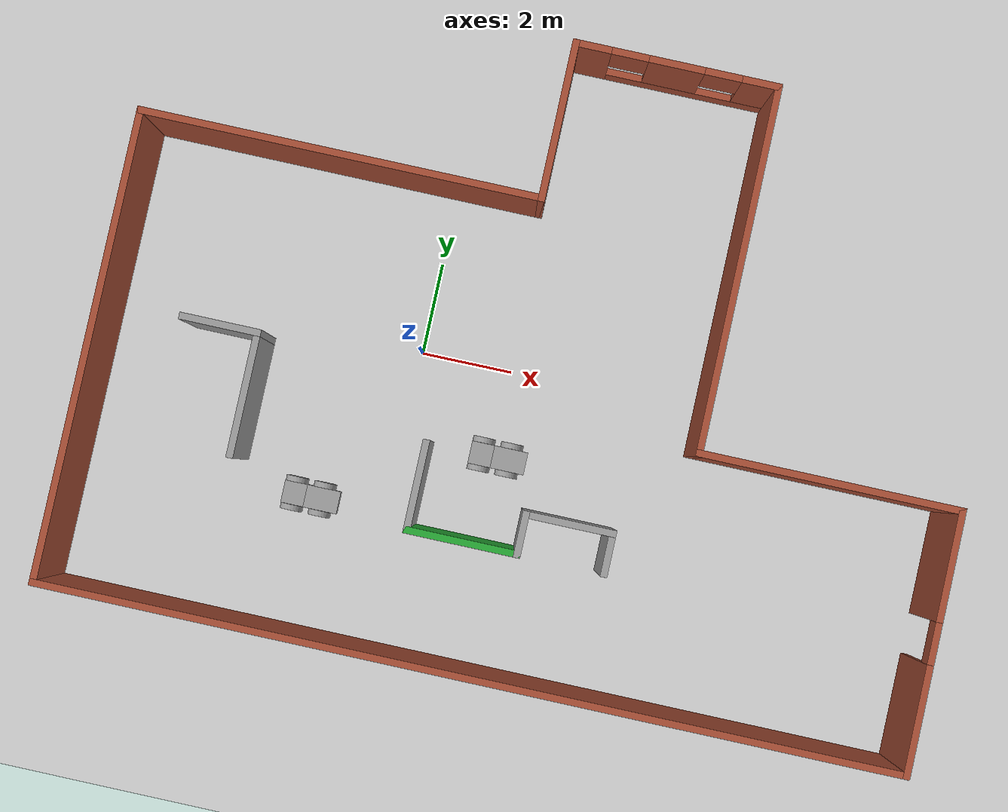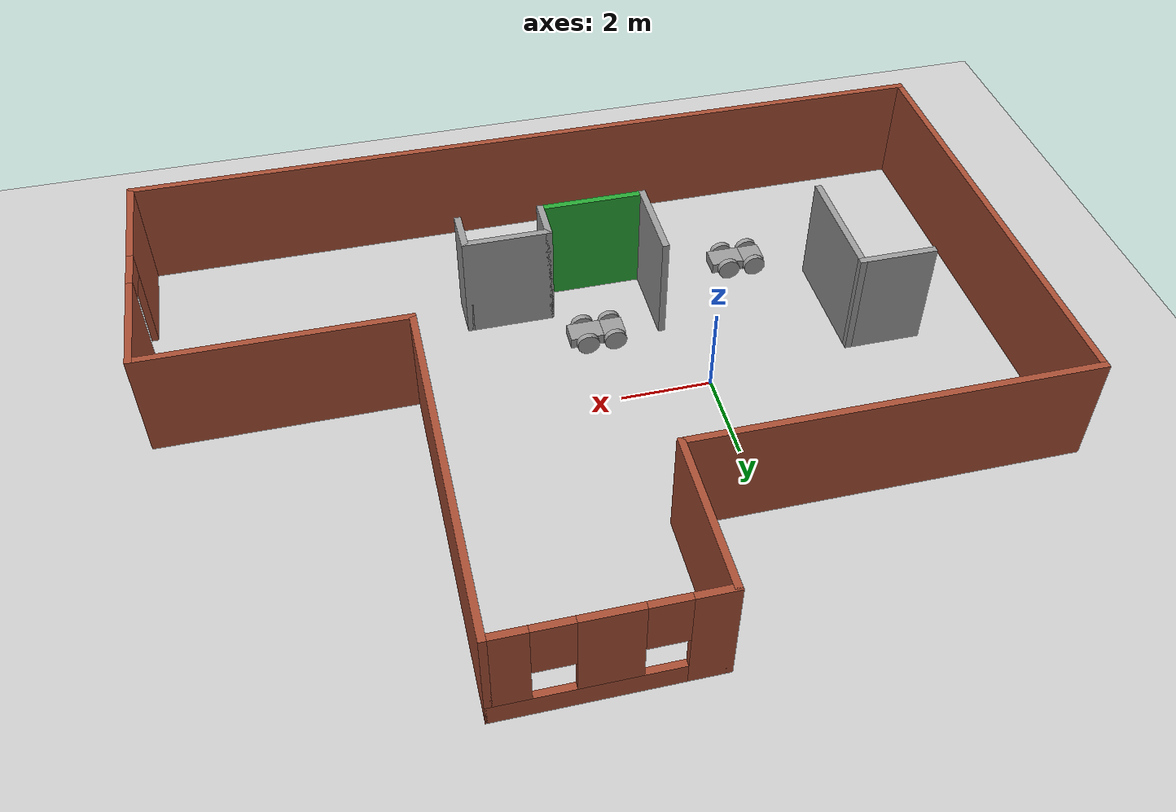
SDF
<sdf version="1.7">
 <world name="default">
  <model name="ground_plane">
   <static>1</static>
   <link name="link">
    <collision name="collision">
     <geometry><plane><normal>0 0 1</normal><size>100 100</size></plane></geometry>
     <surface><friction><ode><mu>100</mu><mu2>50</mu2></ode></friction></surface>
    </collision>
    <visual name="visual">
     <cast_shadows>0</cast_shadows>
     <geometry><plane><normal>0 0 1</normal><size>100 100</size></plane></geometry>
     <material>
      <script><uri>file://media/materials/scripts/gazebo.material</uri><name>Gazebo/Grey</name></script>
     </material>
    </visual>
   </link>
  </model>
  <model name="pj1_building">
   <pose>2.51888 0.191899 0 0 -0 0</pose>
   <link name="Wall_10">
    <pose>9.275 -3.925 0 0 0 -1.5708</pose>
    <visual name="Wall_10_Visual_0">
     <pose>-1.65724 0 1.25 0 -0 0</pose>
     <geometry><box><size>2.43551 0.15 2.5</size></box></geometry>
     <material>
      <script><uri>file://media/materials/scripts/gazebo.material</uri><name>Gazebo/Bricks</name></script>
      <ambient>1 1 1 1</ambient>
     </material>
     <meta><layer>0</layer></meta>
    </visual>
    <collision name="Wall_10_Collision_0">
     <geometry><box><size>2.43551 0.15 2.5</size></box></geometry>
     <pose>-1.65724 0 1.25 0 -0 0</pose>
    </collision>
    <visual name="Wall_10_Visual_1">
     <pose>1.66776 0 1.25 0 -0 0</pose>
     <geometry><box><size>2.41449 0.15 2.5</size></box></geometry>
     <material>
      <script><uri>file://media/materials/scripts/gazebo.material</uri><name>Gazebo/Bricks</name></script>
      <ambient>1 1 1 1</ambient>
     </material>
     <meta><layer>0</layer></meta>
    </visual>
    <collision name="Wall_10_Collision_1">
     <geometry><box><size>2.41449 0.15 2.5</size></box></geometry>
     <pose>1.66776 0 1.25 0 -0 0</pose>
    </collision>
    <visual name="Wall_10_Visual_2">
     <pose>0.010514 0 2.25 0 -0 0</pose>
     <geometry><box><size>0.9 0.15 0.5</size></box></geometry>
     <material>
      <script><uri>file://media/materials/scripts/gazebo.material</uri><name>Gazebo/Bricks</name></script>
      <ambient>1 1 1 1</ambient>
     </material>
     <meta><layer>0</layer></meta>
    </visual>
    <collision name="Wall_10_Collision_2">
     <geometry><box><size>0.9 0.15 0.5</size></box></geometry>
     <pose>0.010514 0 2.25 0 -0 0</pose>
    </collision>
   </link>
   <link name="Wall_11">
    <collision name="Wall_11_Collision">
     <geometry><box><size>18.7 0.15 2.5</size></box></geometry>
     <pose>0 0 1.25 0 -0 0</pose>
    </collision>
    <visual name="Wall_11_Visual">
     <pose>0 0 1.25 0 -0 0</pose>
     <geometry><box><size>18.7 0.15 2.5</size></box></geometry>
     <material>
      <script><uri>file://media/materials/scripts/gazebo.material</uri><name>Gazebo/Bricks</name></script>
      <ambient>1 1 1 1</ambient>
     </material>
     <meta><layer>0</layer></meta>
    </visual>
    <pose>0 -6.725 0 0 -0 3.14159</pose>
   </link>
   <link name="Wall_4">
    <collision name="Wall_4_Collision">
     <geometry><box><size>10.25 0.15 2.5</size></box></geometry>
     <pose>0 0 1.25 0 -0 0</pose>
    </collision>
    <visual name="Wall_4_Visual">
     <pose>0 0 1.25 0 -0 0</pose>
     <geometry><box><size>10.25 0.15 2.5</size></box></geometry>
     <material>
      <script><uri>file://media/materials/scripts/gazebo.material</uri><name>Gazebo/Bricks</name></script>
      <ambient>1 1 1 1</ambient>
     </material>
     <meta><layer>0</layer></meta>
    </visual>
    <pose>-9.275 -1.675 0 0 -0 1.5708</pose>
   </link>
   <link name="Wall_5">
    <collision name="Wall_5_Collision">
     <geometry><box><size>8.75 0.15 2.5</size></box></geometry>
     <pose>0 0 1.25 0 -0 0</pose>
    </collision>
    <visual name="Wall_5_Visual">
     <pose>0 0 1.25 0 -0 0</pose>
     <geometry><box><size>8.75 0.15 2.5</size></box></geometry>
     <material>
      <script><uri>file://media/materials/scripts/gazebo.material</uri><name>Gazebo/Bricks</name></script>
      <ambient>1 1 1 1</ambient>
     </material>
     <meta><layer>0</layer></meta>
    </visual>
    <pose>-4.975 3.375 0 0 -0 0</pose>
   </link>
   <link name="Wall_6">
    <collision name="Wall_6_Collision">
     <geometry><box><size>3.5 0.15 2.5</size></box></geometry>
     <pose>0 0 1.25 0 -0 0</pose>
    </collision>
    <visual name="Wall_6_Visual">
     <pose>0 0 1.25 0 -0 0</pose>
     <geometry><box><size>3.5 0.15 2.5</size></box></geometry>
     <material>
      <script><uri>file://media/materials/scripts/gazebo.material</uri><name>Gazebo/Bricks</name></script>
      <ambient>1 1 1 1</ambient>
     </material>
     <meta><layer>0</layer></meta>
    </visual>
    <pose>-0.675 5.05 0 0 -0 1.5708</pose>
   </link>
   <link name="Wall_7">
    <pose>1.5 6.725 0 0 -0 0</pose>
    <visual name="Wall_7_Visual_0">
     <pose>-1.82606 0 1.25 0 -0 0</pose>
     <geometry><box><size>0.847881 0.15 2.5</size></box></geometry>
     <material>
      <script><uri>file://media/materials/scripts/gazebo.material</uri><name>Gazebo/Bricks</name></script>
      <ambient>1 1 1 1</ambient>
     </material>
     <meta><layer>0</layer></meta>
    </visual>
    <collision name="Wall_7_Collision_0">
     <geometry><box><size>0.847881 0.15 2.5</size></box></geometry>
     <pose>-1.82606 0 1.25 0 -0 0</pose>
    </collision>
    <visual name="Wall_7_Visual_1">
     <pose>0.423941 0 0.25 0 -0 0</pose>
     <geometry><box><size>3.65212 0.15 0.5</size></box></geometry>
     <material>
      <script><uri>file://media/materials/scripts/gazebo.material</uri><name>Gazebo/Bricks</name></script>
      <ambient>1 1 1 1</ambient>
     </material>
     <meta><layer>0</layer></meta>
    </visual>
    <collision name="Wall_7_Collision_1">
     <geometry><box><size>3.65212 0.15 0.5</size></box></geometry>
     <pose>0.423941 0 0.25 0 -0 0</pose>
    </collision>
    <visual name="Wall_7_Visual_2">
     <pose>-0.002694 0 1.5 0 -0 0</pose>
     <geometry><box><size>1.19885 0.15 2</size></box></geometry>
     <material>
      <script><uri>file://media/materials/scripts/gazebo.material</uri><name>Gazebo/Bricks</name></script>
      <ambient>1 1 1 1</ambient>
     </material>
     <meta><layer>0</layer></meta>
    </visual>
    <collision name="Wall_7_Collision_2">
     <geometry><box><size>1.19885 0.15 2</size></box></geometry>
     <pose>-0.002694 0 1.5 0 -0 0</pose>
    </collision>
    <visual name="Wall_7_Visual_3">
     <pose>1.82336 0 1.5 0 -0 0</pose>
     <geometry><box><size>0.853269 0.15 2</size></box></geometry>
     <material>
      <script><uri>file://media/materials/scripts/gazebo.material</uri><name>Gazebo/Bricks</name></script>
      <ambient>1 1 1 1</ambient>
     </material>
     <meta><layer>0</layer></meta>
    </visual>
    <collision name="Wall_7_Collision_3">
     <geometry><box><size>0.853269 0.15 2</size></box></geometry>
     <pose>1.82336 0 1.5 0 -0 0</pose>
    </collision>
    <visual name="Wall_7_Visual_4">
     <pose>-1.00212 0 1.9 0 -0 0</pose>
     <geometry><box><size>0.8 0.15 1.2</size></box></geometry>
     <material>
      <script><uri>file://media/materials/scripts/gazebo.material</uri><name>Gazebo/Bricks</name></script>
      <ambient>1 1 1 1</ambient>
     </material>
     <meta><layer>0</layer></meta>
    </visual>
    <collision name="Wall_7_Collision_4">
     <geometry><box><size>0.8 0.15 1.2</size></box></geometry>
     <pose>-1.00212 0 1.9 0 -0 0</pose>
    </collision>
    <visual name="Wall_7_Visual_5">
     <pose>0.996731 0 1.9 0 -0 0</pose>
     <geometry><box><size>0.8 0.15 1.2</size></box></geometry>
     <material>
      <script><uri>file://media/materials/scripts/gazebo.material</uri><name>Gazebo/Bricks</name></script>
      <ambient>1 1 1 1</ambient>
     </material>
     <meta><layer>0</layer></meta>
    </visual>
    <collision name="Wall_7_Collision_5">
     <geometry><box><size>0.8 0.15 1.2</size></box></geometry>
     <pose>0.996731 0 1.9 0 -0 0</pose>
    </collision>
   </link>
   <link name="Wall_8">
    <collision name="Wall_8_Collision">
     <geometry><box><size>8 0.15 2.5</size></box></geometry>
     <pose>0 0 1.25 0 -0 0</pose>
    </collision>
    <visual name="Wall_8_Visual">
     <pose>0 0 1.25 0 -0 0</pose>
     <geometry><box><size>8 0.15 2.5</size></box></geometry>
     <material>
      <script><uri>file://media/materials/scripts/gazebo.material</uri><name>Gazebo/Bricks</name></script>
      <ambient>1 1 1 1</ambient>
     </material>
     <meta><layer>0</layer></meta>
    </visual>
    <pose>3.675 2.8 0 0 0 -1.5708</pose>
   </link>
   <link name="Wall_9">
    <collision name="Wall_9_Collision">
     <geometry><box><size>5.75 0.15 2.5</size></box></geometry>
     <pose>0 0 1.25 0 -0 0</pose>
    </collision>
    <visual name="Wall_9_Visual">
     <pose>0 0 1.25 0 -0 0</pose>
     <geometry><box><size>5.75 0.15 2.5</size></box></geometry>
     <material>
      <script><uri>file://media/materials/scripts/gazebo.material</uri><name>Gazebo/Bricks</name></script>
      <ambient>1 1 1 1</ambient>
     </material>
     <meta><layer>0</layer></meta>
    </visual>
    <pose>6.475 -1.125 0 0 -0 0</pose>
   </link>
   <static>1</static>
  </model>
  <model name="pj1_robo_1_clone">
   <link name="link_0">
    <pose>-0.3125 0 -0.006249 0 -0 0</pose>
    <inertial>
     <mass>1</mass>
     <inertia>
      <ixx>0.166667</ixx>
      <ixy>0</ixy>
      <ixz>0</ixz>
      <iyy>0.166667</iyy>
      <iyz>0</iyz>
      <izz>0.166667</izz>
     </inertia>
    </inertial>
    <visual name="visual">
     <geometry><box><size>0.5 0.5 0.25</size></box></geometry>
     <material>
      <lighting>1</lighting>
      <script><uri>file://media/materials/scripts/gazebo.material</uri><name>Gazebo/Grey</name></script>
      <shader type="pixel"><normal_map>__default__</normal_map></shader>
      <ambient>0.3 0.3 0.3 1</ambient>
      <diffuse>0.7 0.7 0.7 1</diffuse>
      <specular>0.01 0.01 0.01 1</specular>
      <emissive>0 0 0 1</emissive>
     </material>
    </visual>
    <collision name="collision">
     <geometry><box><size>0.5 0.5 0.25</size></box></geometry>
     <surface>
      <friction>
       <ode><mu>1</mu><mu2>1</mu2><fdir1>0 0 0</fdir1><slip1>0</slip1><slip2>0</slip2></ode>
       <torsional>
        <coefficient>1</coefficient>
        <patch_radius>0</patch_radius>
        <surface_radius>0</surface_radius>
        <use_patch_radius>1</use_patch_radius>
        <ode><slip>0</slip></ode>
       </torsional>
      </friction>
      <bounce><restitution_coefficient>0</restitution_coefficient><threshold>1e+06</threshold></bounce>
      <contact>
       <collide_without_contact>0</collide_without_contact>
       <collide_without_contact_bitmask>1</collide_without_contact_bitmask>
       <collide_bitmask>1</collide_bitmask>
       <ode>
        <soft_cfm>0</soft_cfm>
        <soft_erp>0.2</soft_erp>
        <kp>1e+13</kp>
        <kd>1</kd>
        <max_vel>0.01</max_vel>
        <min_depth>0</min_depth>
       </ode>
       <bullet>
        <split_impulse>1</split_impulse>
        <split_impulse_penetration_threshold>-0.01</split_impulse_penetration_threshold>
        <soft_cfm>0</soft_cfm>
        <soft_erp>0.2</soft_erp>
        <kp>1e+13</kp>
        <kd>1</kd>
       </bullet>
      </contact>
     </surface>
    </collision>
   </link>
   <link name="link_0_clone">
    <pose>0.3125 0 0.001251 0 -0 0</pose>
    <inertial>
     <mass>1</mass>
     <inertia>
      <ixx>0.166667</ixx>
      <ixy>0</ixy>
      <ixz>0</ixz>
      <iyy>0.166667</iyy>
      <iyz>0</iyz>
      <izz>0.166667</izz>
     </inertia>
    </inertial>
    <visual name="visual">
     <geometry><box><size>0.75 0.5 0.25</size></box></geometry>
     <material>
      <lighting>1</lighting>
      <script><uri>file://media/materials/scripts/gazebo.material</uri><name>Gazebo/Grey</name></script>
      <shader type="pixel"><normal_map>__default__</normal_map></shader>
      <ambient>0.3 0.3 0.3 1</ambient>
      <diffuse>0.7 0.7 0.7 1</diffuse>
      <specular>0.01 0.01 0.01 1</specular>
      <emissive>0 0 0 1</emissive>
     </material>
    </visual>
    <collision name="collision">
     <geometry><box><size>0.75 0.5 0.25</size></box></geometry>
     <surface>
      <friction>
       <ode><mu>1</mu><mu2>1</mu2><fdir1>0 0 0</fdir1><slip1>0</slip1><slip2>0</slip2></ode>
       <torsional>
        <coefficient>1</coefficient>
        <patch_radius>0</patch_radius>
        <surface_radius>0</surface_radius>
        <use_patch_radius>1</use_patch_radius>
        <ode><slip>0</slip></ode>
       </torsional>
      </friction>
      <bounce><restitution_coefficient>0</restitution_coefficient><threshold>1e+06</threshold></bounce>
      <contact>
       <collide_without_contact>0</collide_without_contact>
       <collide_without_contact_bitmask>1</collide_without_contact_bitmask>
       <collide_bitmask>1</collide_bitmask>
       <ode>
        <soft_cfm>0</soft_cfm>
        <soft_erp>0.2</soft_erp>
        <kp>1e+13</kp>
        <kd>1</kd>
        <max_vel>0.01</max_vel>
        <min_depth>0</min_depth>
       </ode>
       <bullet>
        <split_impulse>1</split_impulse>
        <split_impulse_penetration_threshold>-0.01</split_impulse_penetration_threshold>
        <soft_cfm>0</soft_cfm>
        <soft_erp>0.2</soft_erp>
        <kp>1e+13</kp>
        <kd>1</kd>
       </bullet>
      </contact>
     </surface>
    </collision>
   </link>
   <link name="link_1">
    <pose>-0.3125 -0.312524 0.001247 1.5707 -0 0</pose>
    <inertial>
     <mass>1</mass>
     <inertia><ixx>0.145833</ixx><ixy>0</ixy><ixz>0</ixz><iyy>0.145833</iyy><iyz>0</iyz><izz>0.125</izz></inertia>
    </inertial>
    <visual name="visual">
     <geometry><cylinder><radius>0.25</radius><length>0.125</length></cylinder></geometry>
     <material>
      <lighting>1</lighting>
      <script><uri>file://media/materials/scripts/gazebo.material</uri><name>Gazebo/Grey</name></script>
      <shader type="pixel"><normal_map>__default__</normal_map></shader>
      <ambient>0.3 0.3 0.3 1</ambient>
      <diffuse>0.7 0.7 0.7 1</diffuse>
      <specular>0.01 0.01 0.01 1</specular>
      <emissive>0 0 0 1</emissive>
     </material>
    </visual>
    <collision name="collision">
     <geometry><cylinder><radius>0.25</radius><length>0.125</length></cylinder></geometry>
     <surface>
      <friction>
       <ode><mu>1</mu><mu2>1</mu2><fdir1>0 0 0</fdir1><slip1>0</slip1><slip2>0</slip2></ode>
       <torsional>
        <coefficient>1</coefficient>
        <patch_radius>0</patch_radius>
        <surface_radius>0</surface_radius>
        <use_patch_radius>1</use_patch_radius>
        <ode><slip>0</slip></ode>
       </torsional>
      </friction>
      <bounce><restitution_coefficient>0</restitution_coefficient><threshold>1e+06</threshold></bounce>
      <contact>
       <collide_without_contact>0</collide_without_contact>
       <collide_without_contact_bitmask>1</collide_without_contact_bitmask>
       <collide_bitmask>1</collide_bitmask>
       <ode>
        <soft_cfm>0</soft_cfm>
        <soft_erp>0.2</soft_erp>
        <kp>1e+13</kp>
        <kd>1</kd>
        <max_vel>0.01</max_vel>
        <min_depth>0</min_depth>
       </ode>
       <bullet>
        <split_impulse>1</split_impulse>
        <split_impulse_penetration_threshold>-0.01</split_impulse_penetration_threshold>
        <soft_cfm>0</soft_cfm>
        <soft_erp>0.2</soft_erp>
        <kp>1e+13</kp>
        <kd>1</kd>
       </bullet>
      </contact>
     </surface>
    </collision>
   </link>
   <link name="link_1_clone">
    <pose>-0.3125 0.312524 0.001251 1.5707 -0 0</pose>
    <inertial>
     <mass>1</mass>
     <inertia><ixx>0.145833</ixx><ixy>0</ixy><ixz>0</ixz><iyy>0.145833</iyy><iyz>0</iyz><izz>0.125</izz></inertia>
    </inertial>
    <visual name="visual">
     <geometry><cylinder><radius>0.25</radius><length>0.125</length></cylinder></geometry>
     <material>
      <lighting>1</lighting>
      <script><uri>file://media/materials/scripts/gazebo.material</uri><name>Gazebo/Grey</name></script>
      <shader type="pixel"><normal_map>__default__</normal_map></shader>
      <ambient>0.3 0.3 0.3 1</ambient>
      <diffuse>0.7 0.7 0.7 1</diffuse>
      <specular>0.01 0.01 0.01 1</specular>
      <emissive>0 0 0 1</emissive>
     </material>
    </visual>
    <collision name="collision">
     <geometry><cylinder><radius>0.25</radius><length>0.125</length></cylinder></geometry>
     <surface>
      <friction>
       <ode><mu>1</mu><mu2>1</mu2><fdir1>0 0 0</fdir1><slip1>0</slip1><slip2>0</slip2></ode>
       <torsional>
        <coefficient>1</coefficient>
        <patch_radius>0</patch_radius>
        <surface_radius>0</surface_radius>
        <use_patch_radius>1</use_patch_radius>
        <ode><slip>0</slip></ode>
       </torsional>
      </friction>
      <bounce><restitution_coefficient>0</restitution_coefficient><threshold>1e+06</threshold></bounce>
      <contact>
       <collide_without_contact>0</collide_without_contact>
       <collide_without_contact_bitmask>1</collide_without_contact_bitmask>
       <collide_bitmask>1</collide_bitmask>
       <ode>
        <soft_cfm>0</soft_cfm>
        <soft_erp>0.2</soft_erp>
        <kp>1e+13</kp>
        <kd>1</kd>
        <max_vel>0.01</max_vel>
        <min_depth>0</min_depth>
       </ode>
       <bullet>
        <split_impulse>1</split_impulse>
        <split_impulse_penetration_threshold>-0.01</split_impulse_penetration_threshold>
        <soft_cfm>0</soft_cfm>
        <soft_erp>0.2</soft_erp>
        <kp>1e+13</kp>
        <kd>1</kd>
       </bullet>
      </contact>
     </surface>
    </collision>
   </link>
   <link name="link_1_clone_0">
    <pose>0.3125 -0.312524 0.001251 1.5707 -0 0</pose>
    <inertial>
     <mass>1</mass>
     <inertia><ixx>0.145833</ixx><ixy>0</ixy><ixz>0</ixz><iyy>0.145833</iyy><iyz>0</iyz><izz>0.125</izz></inertia>
    </inertial>
    <visual name="visual">
     <geometry><cylinder><radius>0.25</radius><length>0.125</length></cylinder></geometry>
     <material>
      <lighting>1</lighting>
      <script><uri>file://media/materials/scripts/gazebo.material</uri><name>Gazebo/Grey</name></script>
      <shader type="pixel"><normal_map>__default__</normal_map></shader>
      <ambient>0.3 0.3 0.3 1</ambient>
      <diffuse>0.7 0.7 0.7 1</diffuse>
      <specular>0.01 0.01 0.01 1</specular>
      <emissive>0 0 0 1</emissive>
     </material>
    </visual>
    <collision name="collision">
     <geometry><cylinder><radius>0.25</radius><length>0.125</length></cylinder></geometry>
     <surface>
      <friction>
       <ode><mu>1</mu><mu2>1</mu2><fdir1>0 0 0</fdir1><slip1>0</slip1><slip2>0</slip2></ode>
       <torsional>
        <coefficient>1</coefficient>
        <patch_radius>0</patch_radius>
        <surface_radius>0</surface_radius>
        <use_patch_radius>1</use_patch_radius>
        <ode><slip>0</slip></ode>
       </torsional>
      </friction>
      <bounce><restitution_coefficient>0</restitution_coefficient><threshold>1e+06</threshold></bounce>
      <contact>
       <collide_without_contact>0</collide_without_contact>
       <collide_without_contact_bitmask>1</collide_without_contact_bitmask>
       <collide_bitmask>1</collide_bitmask>
       <ode>
        <soft_cfm>0</soft_cfm>
        <soft_erp>0.2</soft_erp>
        <kp>1e+13</kp>
        <kd>1</kd>
        <max_vel>0.01</max_vel>
        <min_depth>0</min_depth>
       </ode>
       <bullet>
        <split_impulse>1</split_impulse>
        <split_impulse_penetration_threshold>-0.01</split_impulse_penetration_threshold>
        <soft_cfm>0</soft_cfm>
        <soft_erp>0.2</soft_erp>
        <kp>1e+13</kp>
        <kd>1</kd>
       </bullet>
      </contact>
     </surface>
    </collision>
   </link>
   <link name="link_1_clone_1">
    <pose>0.3125 0.312524 0.001251 1.5707 -0 0</pose>
    <inertial>
     <mass>1</mass>
     <inertia><ixx>0.145833</ixx><ixy>0</ixy><ixz>0</ixz><iyy>0.145833</iyy><iyz>0</iyz><izz>0.125</izz></inertia>
    </inertial>
    <visual name="visual">
     <geometry><cylinder><radius>0.25</radius><length>0.125</length></cylinder></geometry>
     <material>
      <lighting>1</lighting>
      <script><uri>file://media/materials/scripts/gazebo.material</uri><name>Gazebo/Grey</name></script>
      <shader type="pixel"><normal_map>__default__</normal_map></shader>
      <ambient>0.3 0.3 0.3 1</ambient>
      <diffuse>0.7 0.7 0.7 1</diffuse>
      <specular>0.01 0.01 0.01 1</specular>
      <emissive>0 0 0 1</emissive>
     </material>
    </visual>
    <collision name="collision">
     <geometry><cylinder><radius>0.25</radius><length>0.125</length></cylinder></geometry>
     <surface>
      <friction>
       <ode><mu>1</mu><mu2>1</mu2><fdir1>0 0 0</fdir1><slip1>0</slip1><slip2>0</slip2></ode>
       <torsional>
        <coefficient>1</coefficient>
        <patch_radius>0</patch_radius>
        <surface_radius>0</surface_radius>
        <use_patch_radius>1</use_patch_radius>
        <ode><slip>0</slip></ode>
       </torsional>
      </friction>
      <bounce><restitution_coefficient>0</restitution_coefficient><threshold>1e+06</threshold></bounce>
      <contact>
       <collide_without_contact>0</collide_without_contact>
       <collide_without_contact_bitmask>1</collide_without_contact_bitmask>
       <collide_bitmask>1</collide_bitmask>
       <ode>
        <soft_cfm>0</soft_cfm>
        <soft_erp>0.2</soft_erp>
        <kp>1e+13</kp>
        <kd>1</kd>
        <max_vel>0.01</max_vel>
        <min_depth>0</min_depth>
       </ode>
       <bullet>
        <split_impulse>1</split_impulse>
        <split_impulse_penetration_threshold>-0.01</split_impulse_penetration_threshold>
        <soft_cfm>0</soft_cfm>
        <soft_erp>0.2</soft_erp>
        <kp>1e+13</kp>
        <kd>1</kd>
       </bullet>
      </contact>
     </surface>
    </collision>
   </link>
   <joint name="link_0_JOINT_1" type="fixed">
    <parent>link_0</parent>
    <child>link_0_clone</child>
    <physics>
     <ode><limit><cfm>0</cfm><erp>0.2</erp></limit><suspension><cfm>0</cfm><erp>0.2</erp></suspension></ode>
    </physics>
   </joint>
   <joint name="link_0_JOINT_2" type="revolute">
    <parent>link_0</parent>
    <child>link_1</child>
    <axis>
     <xyz>1 0 0</xyz>
     <limit>
      <lower>-1.79769e+308</lower>
      <upper>1.79769e+308</upper>
      <effort>-1</effort>
      <velocity>-1</velocity>
     </limit>
     <dynamics>
      <spring_reference>0</spring_reference>
      <spring_stiffness>0</spring_stiffness>
      <damping>0</damping>
     </dynamics>
    </axis>
    <physics>
     <ode><limit><cfm>0</cfm><erp>0.2</erp></limit><suspension><cfm>0</cfm><erp>0.2</erp></suspension></ode>
    </physics>
   </joint>
   <joint name="link_0_JOINT_3" type="revolute">
    <parent>link_0</parent>
    <child>link_1_clone</child>
    <axis>
     <xyz>1 0 0</xyz>
     <limit>
      <lower>-1.79769e+308</lower>
      <upper>1.79769e+308</upper>
      <effort>-1</effort>
      <velocity>-1</velocity>
     </limit>
     <dynamics>
      <spring_reference>0</spring_reference>
      <spring_stiffness>0</spring_stiffness>
      <damping>0</damping>
     </dynamics>
    </axis>
    <physics>
     <ode><limit><cfm>0</cfm><erp>0.2</erp></limit><suspension><cfm>0</cfm><erp>0.2</erp></suspension></ode>
    </physics>
   </joint>
   <joint name="link_0_clone_JOINT_4" type="revolute">
    <parent>link_0_clone</parent>
    <child>link_1_clone_1</child>
    <axis>
     <xyz>1 0 0</xyz>
     <limit>
      <lower>-1.79769e+308</lower>
      <upper>1.79769e+308</upper>
      <effort>-1</effort>
      <velocity>-1</velocity>
     </limit>
     <dynamics>
      <spring_reference>0</spring_reference>
      <spring_stiffness>0</spring_stiffness>
      <damping>0</damping>
     </dynamics>
    </axis>
    <physics>
     <ode><limit><cfm>0</cfm><erp>0.2</erp></limit><suspension><cfm>0</cfm><erp>0.2</erp></suspension></ode>
    </physics>
   </joint>
   <joint name="link_0_clone_JOINT_5" type="revolute">
    <parent>link_0_clone</parent>
    <child>link_1_clone_0</child>
    <axis>
     <xyz>1 0 0</xyz>
     <limit>
      <lower>-1.79769e+308</lower>
      <upper>1.79769e+308</upper>
      <effort>-1</effort>
      <velocity>-1</velocity>
     </limit>
     <dynamics>
      <spring_reference>0</spring_reference>
      <spring_stiffness>0</spring_stiffness>
      <damping>0</damping>
     </dynamics>
    </axis>
    <physics>
     <ode><limit><cfm>0</cfm><erp>0.2</erp></limit><suspension><cfm>0</cfm><erp>0.2</erp></suspension></ode>
    </physics>
   </joint>
   <static>0</static>
   <pose>2.05224 -1.91404 0.24875 -3e-06 6e-06 0.000158</pose>
  </model>
  <model name="pj1_robo_1_clone_clone">
   <link name="link_0">
    <pose>-0.3125 0 -0.006249 0 -0 0</pose>
    <inertial>
     <mass>1</mass>
     <inertia>
      <ixx>0.166667</ixx>
      <ixy>0</ixy>
      <ixz>0</ixz>
      <iyy>0.166667</iyy>
      <iyz>0</iyz>
      <izz>0.166667</izz>
     </inertia>
    </inertial>
    <visual name="visual">
     <geometry><box><size>0.5 0.5 0.25</size></box></geometry>
     <material>
      <lighting>1</lighting>
      <script><uri>file://media/materials/scripts/gazebo.material</uri><name>Gazebo/Grey</name></script>
      <shader type="pixel"><normal_map>__default__</normal_map></shader>
      <ambient>0.3 0.3 0.3 1</ambient>
      <diffuse>0.7 0.7 0.7 1</diffuse>
      <specular>0.01 0.01 0.01 1</specular>
      <emissive>0 0 0 1</emissive>
     </material>
    </visual>
    <collision name="collision">
     <geometry><box><size>0.5 0.5 0.25</size></box></geometry>
     <surface>
      <friction>
       <ode><mu>1</mu><mu2>1</mu2><fdir1>0 0 0</fdir1><slip1>0</slip1><slip2>0</slip2></ode>
       <torsional>
        <coefficient>1</coefficient>
        <patch_radius>0</patch_radius>
        <surface_radius>0</surface_radius>
        <use_patch_radius>1</use_patch_radius>
        <ode><slip>0</slip></ode>
       </torsional>
      </friction>
      <bounce><restitution_coefficient>0</restitution_coefficient><threshold>1e+06</threshold></bounce>
      <contact>
       <collide_without_contact>0</collide_without_contact>
       <collide_without_contact_bitmask>1</collide_without_contact_bitmask>
       <collide_bitmask>1</collide_bitmask>
       <ode>
        <soft_cfm>0</soft_cfm>
        <soft_erp>0.2</soft_erp>
        <kp>1e+13</kp>
        <kd>1</kd>
        <max_vel>0.01</max_vel>
        <min_depth>0</min_depth>
       </ode>
       <bullet>
        <split_impulse>1</split_impulse>
        <split_impulse_penetration_threshold>-0.01</split_impulse_penetration_threshold>
        <soft_cfm>0</soft_cfm>
        <soft_erp>0.2</soft_erp>
        <kp>1e+13</kp>
        <kd>1</kd>
       </bullet>
      </contact>
     </surface>
    </collision>
   </link>
   <link name="link_0_clone">
    <pose>0.3125 0 0.001251 0 -0 0</pose>
    <inertial>
     <mass>1</mass>
     <inertia>
      <ixx>0.166667</ixx>
      <ixy>0</ixy>
      <ixz>0</ixz>
      <iyy>0.166667</iyy>
      <iyz>0</iyz>
      <izz>0.166667</izz>
     </inertia>
    </inertial>
    <visual name="visual">
     <geometry><box><size>0.75 0.5 0.25</size></box></geometry>
     <material>
      <lighting>1</lighting>
      <script><uri>file://media/materials/scripts/gazebo.material</uri><name>Gazebo/Grey</name></script>
      <shader type="pixel"><normal_map>__default__</normal_map></shader>
      <ambient>0.3 0.3 0.3 1</ambient>
      <diffuse>0.7 0.7 0.7 1</diffuse>
      <specular>0.01 0.01 0.01 1</specular>
      <emissive>0 0 0 1</emissive>
     </material>
    </visual>
    <collision name="collision">
     <geometry><box><size>0.75 0.5 0.25</size></box></geometry>
     <surface>
      <friction>
       <ode><mu>1</mu><mu2>1</mu2><fdir1>0 0 0</fdir1><slip1>0</slip1><slip2>0</slip2></ode>
       <torsional>
        <coefficient>1</coefficient>
        <patch_radius>0</patch_radius>
        <surface_radius>0</surface_radius>
        <use_patch_radius>1</use_patch_radius>
        <ode><slip>0</slip></ode>
       </torsional>
      </friction>
      <bounce><restitution_coefficient>0</restitution_coefficient><threshold>1e+06</threshold></bounce>
      <contact>
       <collide_without_contact>0</collide_without_contact>
       <collide_without_contact_bitmask>1</collide_without_contact_bitmask>
       <collide_bitmask>1</collide_bitmask>
       <ode>
        <soft_cfm>0</soft_cfm>
        <soft_erp>0.2</soft_erp>
        <kp>1e+13</kp>
        <kd>1</kd>
        <max_vel>0.01</max_vel>
        <min_depth>0</min_depth>
       </ode>
       <bullet>
        <split_impulse>1</split_impulse>
        <split_impulse_penetration_threshold>-0.01</split_impulse_penetration_threshold>
        <soft_cfm>0</soft_cfm>
        <soft_erp>0.2</soft_erp>
        <kp>1e+13</kp>
        <kd>1</kd>
       </bullet>
      </contact>
     </surface>
    </collision>
   </link>
   <link name="link_1">
    <pose>-0.3125 -0.312524 0.001247 1.5707 -0 0</pose>
    <inertial>
     <mass>1</mass>
     <inertia><ixx>0.145833</ixx><ixy>0</ixy><ixz>0</ixz><iyy>0.145833</iyy><iyz>0</iyz><izz>0.125</izz></inertia>
    </inertial>
    <visual name="visual">
     <geometry><cylinder><radius>0.25</radius><length>0.125</length></cylinder></geometry>
     <material>
      <lighting>1</lighting>
      <script><uri>file://media/materials/scripts/gazebo.material</uri><name>Gazebo/Grey</name></script>
      <shader type="pixel"><normal_map>__default__</normal_map></shader>
      <ambient>0.3 0.3 0.3 1</ambient>
      <diffuse>0.7 0.7 0.7 1</diffuse>
      <specular>0.01 0.01 0.01 1</specular>
      <emissive>0 0 0 1</emissive>
     </material>
    </visual>
    <collision name="collision">
     <geometry><cylinder><radius>0.25</radius><length>0.125</length></cylinder></geometry>
     <surface>
      <friction>
       <ode><mu>1</mu><mu2>1</mu2><fdir1>0 0 0</fdir1><slip1>0</slip1><slip2>0</slip2></ode>
       <torsional>
        <coefficient>1</coefficient>
        <patch_radius>0</patch_radius>
        <surface_radius>0</surface_radius>
        <use_patch_radius>1</use_patch_radius>
        <ode><slip>0</slip></ode>
       </torsional>
      </friction>
      <bounce><restitution_coefficient>0</restitution_coefficient><threshold>1e+06</threshold></bounce>
      <contact>
       <collide_without_contact>0</collide_without_contact>
       <collide_without_contact_bitmask>1</collide_without_contact_bitmask>
       <collide_bitmask>1</collide_bitmask>
       <ode>
        <soft_cfm>0</soft_cfm>
        <soft_erp>0.2</soft_erp>
        <kp>1e+13</kp>
        <kd>1</kd>
        <max_vel>0.01</max_vel>
        <min_depth>0</min_depth>
       </ode>
       <bullet>
        <split_impulse>1</split_impulse>
        <split_impulse_penetration_threshold>-0.01</split_impulse_penetration_threshold>
        <soft_cfm>0</soft_cfm>
        <soft_erp>0.2</soft_erp>
        <kp>1e+13</kp>
        <kd>1</kd>
       </bullet>
      </contact>
     </surface>
    </collision>
   </link>
   <link name="link_1_clone">
    <pose>-0.3125 0.312524 0.001251 1.5707 -0 0</pose>
    <inertial>
     <mass>1</mass>
     <inertia><ixx>0.145833</ixx><ixy>0</ixy><ixz>0</ixz><iyy>0.145833</iyy><iyz>0</iyz><izz>0.125</izz></inertia>
    </inertial>
    <visual name="visual">
     <geometry><cylinder><radius>0.25</radius><length>0.125</length></cylinder></geometry>
     <material>
      <lighting>1</lighting>
      <script><uri>file://media/materials/scripts/gazebo.material</uri><name>Gazebo/Grey</name></script>
      <shader type="pixel"><normal_map>__default__</normal_map></shader>
      <ambient>0.3 0.3 0.3 1</ambient>
      <diffuse>0.7 0.7 0.7 1</diffuse>
      <specular>0.01 0.01 0.01 1</specular>
      <emissive>0 0 0 1</emissive>
     </material>
    </visual>
    <collision name="collision">
     <geometry><cylinder><radius>0.25</radius><length>0.125</length></cylinder></geometry>
     <surface>
      <friction>
       <ode><mu>1</mu><mu2>1</mu2><fdir1>0 0 0</fdir1><slip1>0</slip1><slip2>0</slip2></ode>
       <torsional>
        <coefficient>1</coefficient>
        <patch_radius>0</patch_radius>
        <surface_radius>0</surface_radius>
        <use_patch_radius>1</use_patch_radius>
        <ode><slip>0</slip></ode>
       </torsional>
      </friction>
      <bounce><restitution_coefficient>0</restitution_coefficient><threshold>1e+06</threshold></bounce>
      <contact>
       <collide_without_contact>0</collide_without_contact>
       <collide_without_contact_bitmask>1</collide_without_contact_bitmask>
       <collide_bitmask>1</collide_bitmask>
       <ode>
        <soft_cfm>0</soft_cfm>
        <soft_erp>0.2</soft_erp>
        <kp>1e+13</kp>
        <kd>1</kd>
        <max_vel>0.01</max_vel>
        <min_depth>0</min_depth>
       </ode>
       <bullet>
        <split_impulse>1</split_impulse>
        <split_impulse_penetration_threshold>-0.01</split_impulse_penetration_threshold>
        <soft_cfm>0</soft_cfm>
        <soft_erp>0.2</soft_erp>
        <kp>1e+13</kp>
        <kd>1</kd>
       </bullet>
      </contact>
     </surface>
    </collision>
   </link>
   <link name="link_1_clone_0">
    <pose>0.3125 -0.312524 0.001251 1.5707 -0 0</pose>
    <inertial>
     <mass>1</mass>
     <inertia><ixx>0.145833</ixx><ixy>0</ixy><ixz>0</ixz><iyy>0.145833</iyy><iyz>0</iyz><izz>0.125</izz></inertia>
    </inertial>
    <visual name="visual">
     <geometry><cylinder><radius>0.25</radius><length>0.125</length></cylinder></geometry>
     <material>
      <lighting>1</lighting>
      <script><uri>file://media/materials/scripts/gazebo.material</uri><name>Gazebo/Grey</name></script>
      <shader type="pixel"><normal_map>__default__</normal_map></shader>
      <ambient>0.3 0.3 0.3 1</ambient>
      <diffuse>0.7 0.7 0.7 1</diffuse>
      <specular>0.01 0.01 0.01 1</specular>
      <emissive>0 0 0 1</emissive>
     </material>
    </visual>
    <collision name="collision">
     <geometry><cylinder><radius>0.25</radius><length>0.125</length></cylinder></geometry>
     <surface>
      <friction>
       <ode><mu>1</mu><mu2>1</mu2><fdir1>0 0 0</fdir1><slip1>0</slip1><slip2>0</slip2></ode>
       <torsional>
        <coefficient>1</coefficient>
        <patch_radius>0</patch_radius>
        <surface_radius>0</surface_radius>
        <use_patch_radius>1</use_patch_radius>
        <ode><slip>0</slip></ode>
       </torsional>
      </friction>
      <bounce><restitution_coefficient>0</restitution_coefficient><threshold>1e+06</threshold></bounce>
      <contact>
       <collide_without_contact>0</collide_without_contact>
       <collide_without_contact_bitmask>1</collide_without_contact_bitmask>
       <collide_bitmask>1</collide_bitmask>
       <ode>
        <soft_cfm>0</soft_cfm>
        <soft_erp>0.2</soft_erp>
        <kp>1e+13</kp>
        <kd>1</kd>
        <max_vel>0.01</max_vel>
        <min_depth>0</min_depth>
       </ode>
       <bullet>
        <split_impulse>1</split_impulse>
        <split_impulse_penetration_threshold>-0.01</split_impulse_penetration_threshold>
        <soft_cfm>0</soft_cfm>
        <soft_erp>0.2</soft_erp>
        <kp>1e+13</kp>
        <kd>1</kd>
       </bullet>
      </contact>
     </surface>
    </collision>
   </link>
   <link name="link_1_clone_1">
    <pose>0.3125 0.312524 0.001251 1.5707 -0 0</pose>
    <inertial>
     <mass>1</mass>
     <inertia><ixx>0.145833</ixx><ixy>0</ixy><ixz>0</ixz><iyy>0.145833</iyy><iyz>0</iyz><izz>0.125</izz></inertia>
    </inertial>
    <visual name="visual">
     <geometry><cylinder><radius>0.25</radius><length>0.125</length></cylinder></geometry>
     <material>
      <lighting>1</lighting>
      <script><uri>file://media/materials/scripts/gazebo.material</uri><name>Gazebo/Grey</name></script>
      <shader type="pixel"><normal_map>__default__</normal_map></shader>
      <ambient>0.3 0.3 0.3 1</ambient>
      <diffuse>0.7 0.7 0.7 1</diffuse>
      <specular>0.01 0.01 0.01 1</specular>
      <emissive>0 0 0 1</emissive>
     </material>
    </visual>
    <collision name="collision">
     <geometry><cylinder><radius>0.25</radius><length>0.125</length></cylinder></geometry>
     <surface>
      <friction>
       <ode><mu>1</mu><mu2>1</mu2><fdir1>0 0 0</fdir1><slip1>0</slip1><slip2>0</slip2></ode>
       <torsional>
        <coefficient>1</coefficient>
        <patch_radius>0</patch_radius>
        <surface_radius>0</surface_radius>
        <use_patch_radius>1</use_patch_radius>
        <ode><slip>0</slip></ode>
       </torsional>
      </friction>
      <bounce><restitution_coefficient>0</restitution_coefficient><threshold>1e+06</threshold></bounce>
      <contact>
       <collide_without_contact>0</collide_without_contact>
       <collide_without_contact_bitmask>1</collide_without_contact_bitmask>
       <collide_bitmask>1</collide_bitmask>
       <ode>
        <soft_cfm>0</soft_cfm>
        <soft_erp>0.2</soft_erp>
        <kp>1e+13</kp>
        <kd>1</kd>
        <max_vel>0.01</max_vel>
        <min_depth>0</min_depth>
       </ode>
       <bullet>
        <split_impulse>1</split_impulse>
        <split_impulse_penetration_threshold>-0.01</split_impulse_penetration_threshold>
        <soft_cfm>0</soft_cfm>
        <soft_erp>0.2</soft_erp>
        <kp>1e+13</kp>
        <kd>1</kd>
       </bullet>
      </contact>
     </surface>
    </collision>
   </link>
   <joint name="link_0_JOINT_1" type="fixed">
    <parent>link_0</parent>
    <child>link_0_clone</child>
    <physics>
     <ode><limit><cfm>0</cfm><erp>0.2</erp></limit><suspension><cfm>0</cfm><erp>0.2</erp></suspension></ode>
    </physics>
   </joint>
   <joint name="link_0_JOINT_2" type="revolute">
    <parent>link_0</parent>
    <child>link_1</child>
    <axis>
     <xyz>1 0 0</xyz>
     <limit>
      <lower>-1.79769e+308</lower>
      <upper>1.79769e+308</upper>
      <effort>-1</effort>
      <velocity>-1</velocity>
     </limit>
     <dynamics>
      <spring_reference>0</spring_reference>
      <spring_stiffness>0</spring_stiffness>
      <damping>0</damping>
     </dynamics>
    </axis>
    <physics>
     <ode><limit><cfm>0</cfm><erp>0.2</erp></limit><suspension><cfm>0</cfm><erp>0.2</erp></suspension></ode>
    </physics>
   </joint>
   <joint name="link_0_JOINT_3" type="revolute">
    <parent>link_0</parent>
    <child>link_1_clone</child>
    <axis>
     <xyz>1 0 0</xyz>
     <limit>
      <lower>-1.79769e+308</lower>
      <upper>1.79769e+308</upper>
      <effort>-1</effort>
      <velocity>-1</velocity>
     </limit>
     <dynamics>
      <spring_reference>0</spring_reference>
      <spring_stiffness>0</spring_stiffness>
      <damping>0</damping>
     </dynamics>
    </axis>
    <physics>
     <ode><limit><cfm>0</cfm><erp>0.2</erp></limit><suspension><cfm>0</cfm><erp>0.2</erp></suspension></ode>
    </physics>
   </joint>
   <joint name="link_0_clone_JOINT_4" type="revolute">
    <parent>link_0_clone</parent>
    <child>link_1_clone_1</child>
    <axis>
     <xyz>1 0 0</xyz>
     <limit>
      <lower>-1.79769e+308</lower>
      <upper>1.79769e+308</upper>
      <effort>-1</effort>
      <velocity>-1</velocity>
     </limit>
     <dynamics>
      <spring_reference>0</spring_reference>
      <spring_stiffness>0</spring_stiffness>
      <damping>0</damping>
     </dynamics>
    </axis>
    <physics>
     <ode><limit><cfm>0</cfm><erp>0.2</erp></limit><suspension><cfm>0</cfm><erp>0.2</erp></suspension></ode>
    </physics>
   </joint>
   <joint name="link_0_clone_JOINT_5" type="revolute">
    <parent>link_0_clone</parent>
    <child>link_1_clone_0</child>
    <axis>
     <xyz>1 0 0</xyz>
     <limit>
      <lower>-1.79769e+308</lower>
      <upper>1.79769e+308</upper>
      <effort>-1</effort>
      <velocity>-1</velocity>
     </limit>
     <dynamics>
      <spring_reference>0</spring_reference>
      <spring_stiffness>0</spring_stiffness>
      <damping>0</damping>
     </dynamics>
    </axis>
    <physics>
     <ode><limit><cfm>0</cfm><erp>0.2</erp></limit><suspension><cfm>0</cfm><erp>0.2</erp></suspension></ode>
    </physics>
   </joint>
   <static>0</static>
   <pose>-1.77028 -3.6342 0.24875 0 3e-06 0.00055</pose>
  </model>
  <model name="building_1">
   <link name="Wall_0">
    <pose>-3.265 0.1775 0 0 -0 1.5708</pose>
    <visual name="Wall_0_Visual">
     <pose>0 0 1.25 0 -0 0</pose>
     <geometry><box><size>2.75 0.15 2.5</size></box></geometry>
     <material>
      <script><uri>file://media/materials/scripts/gazebo.material</uri><name>Gazebo/Grey</name></script>
      <ambient>1 1 1 1</ambient>
      <shader type="pixel"/>
     </material>
     <meta><layer>0</layer></meta>
    </visual>
    <collision name="Wall_0_Collision">
     <pose>0 0 1.25 0 -0 0</pose>
     <geometry><box><size>2.75 0.15 2.5</size></box></geometry>
     <surface>
      <friction>
       <ode><mu>1</mu><mu2>1</mu2><fdir1>0 0 0</fdir1><slip1>0</slip1><slip2>0</slip2></ode>
       <torsional>
        <coefficient>1</coefficient>
        <patch_radius>0</patch_radius>
        <surface_radius>0</surface_radius>
        <use_patch_radius>1</use_patch_radius>
        <ode><slip>0</slip></ode>
       </torsional>
      </friction>
      <bounce><restitution_coefficient>0</restitution_coefficient><threshold>1e+06</threshold></bounce>
      <contact>
       <collide_without_contact>0</collide_without_contact>
       <collide_without_contact_bitmask>1</collide_without_contact_bitmask>
       <collide_bitmask>1</collide_bitmask>
       <ode>
        <soft_cfm>0</soft_cfm>
        <soft_erp>0.2</soft_erp>
        <kp>1e+13</kp>
        <kd>1</kd>
        <max_vel>0.01</max_vel>
        <min_depth>0</min_depth>
       </ode>
       <bullet>
        <split_impulse>1</split_impulse>
        <split_impulse_penetration_threshold>-0.01</split_impulse_penetration_threshold>
        <soft_cfm>0</soft_cfm>
        <soft_erp>0.2</soft_erp>
        <kp>1e+13</kp>
        <kd>1</kd>
       </bullet>
      </contact>
     </surface>
    </collision>
   </link>
   <link name="Wall_1">
    <pose>-4.065 1.4775 0 0 -0 3.14159</pose>
    <visual name="Wall_1_Visual">
     <pose>0 0 1.25 0 -0 0</pose>
     <geometry><box><size>1.75 0.15 2.5</size></box></geometry>
     <material>
      <script><uri>file://media/materials/scripts/gazebo.material</uri><name>Gazebo/Grey</name></script>
      <ambient>1 1 1 1</ambient>
      <shader type="pixel"/>
     </material>
     <meta><layer>0</layer></meta>
    </visual>
    <collision name="Wall_1_Collision">
     <pose>0 0 1.25 0 -0 0</pose>
     <geometry><box><size>1.75 0.15 2.5</size></box></geometry>
     <surface>
      <friction>
       <ode><mu>1</mu><mu2>1</mu2><fdir1>0 0 0</fdir1><slip1>0</slip1><slip2>0</slip2></ode>
       <torsional>
        <coefficient>1</coefficient>
        <patch_radius>0</patch_radius>
        <surface_radius>0</surface_radius>
        <use_patch_radius>1</use_patch_radius>
        <ode><slip>0</slip></ode>
       </torsional>
      </friction>
      <bounce><restitution_coefficient>0</restitution_coefficient><threshold>1e+06</threshold></bounce>
      <contact>
       <collide_without_contact>0</collide_without_contact>
       <collide_without_contact_bitmask>1</collide_without_contact_bitmask>
       <collide_bitmask>1</collide_bitmask>
       <ode>
        <soft_cfm>0</soft_cfm>
        <soft_erp>0.2</soft_erp>
        <kp>1e+13</kp>
        <kd>1</kd>
        <max_vel>0.01</max_vel>
        <min_depth>0</min_depth>
       </ode>
       <bullet>
        <split_impulse>1</split_impulse>
        <split_impulse_penetration_threshold>-0.01</split_impulse_penetration_threshold>
        <soft_cfm>0</soft_cfm>
        <soft_erp>0.2</soft_erp>
        <kp>1e+13</kp>
        <kd>1</kd>
       </bullet>
      </contact>
     </surface>
    </collision>
   </link>
   <link name="Wall_4">
    <pose>0.665 -0.9375 0 0 0 -1.5708</pose>
    <visual name="Wall_4_Visual">
     <pose>0 0 1.25 0 -0 0</pose>
     <geometry><box><size>2 0.15 2.5</size></box></geometry>
     <material>
      <script><uri>file://media/materials/scripts/gazebo.material</uri><name>Gazebo/Grey</name></script>
      <ambient>1 1 1 1</ambient>
      <shader type="pixel"/>
     </material>
     <meta><layer>0</layer></meta>
    </visual>
    <collision name="Wall_4_Collision">
     <pose>0 0 1.25 0 -0 0</pose>
     <geometry><box><size>2 0.15 2.5</size></box></geometry>
     <surface>
      <friction>
       <ode><mu>1</mu><mu2>1</mu2><fdir1>0 0 0</fdir1><slip1>0</slip1><slip2>0</slip2></ode>
       <torsional>
        <coefficient>1</coefficient>
        <patch_radius>0</patch_radius>
        <surface_radius>0</surface_radius>
        <use_patch_radius>1</use_patch_radius>
        <ode><slip>0</slip></ode>
       </torsional>
      </friction>
      <bounce><restitution_coefficient>0</restitution_coefficient><threshold>1e+06</threshold></bounce>
      <contact>
       <collide_without_contact>0</collide_without_contact>
       <collide_without_contact_bitmask>1</collide_without_contact_bitmask>
       <collide_bitmask>1</collide_bitmask>
       <ode>
        <soft_cfm>0</soft_cfm>
        <soft_erp>0.2</soft_erp>
        <kp>1e+13</kp>
        <kd>1</kd>
        <max_vel>0.01</max_vel>
        <min_depth>0</min_depth>
       </ode>
       <bullet>
        <split_impulse>1</split_impulse>
        <split_impulse_penetration_threshold>-0.01</split_impulse_penetration_threshold>
        <soft_cfm>0</soft_cfm>
        <soft_erp>0.2</soft_erp>
        <kp>1e+13</kp>
        <kd>1</kd>
       </bullet>
      </contact>
     </surface>
    </collision>
   </link>
   <link name="Wall_5">
    <pose>1.84 -1.8625 0 0 -0 0</pose>
    <inertial>
     <mass>1</mass>
     <inertia><ixx>1</ixx><ixy>0</ixy><ixz>0</ixz><iyy>1</iyy><iyz>0</iyz><izz>1</izz></inertia>
    </inertial>
    <visual name="Wall_5_Visual">
     <pose>0 0 1.25 0 -0 0</pose>
     <geometry><box><size>2.5 0.15 2.5</size></box></geometry>
     <material>
      <script><uri>file://media/materials/scripts/gazebo.material</uri><name>Gazebo/Green</name></script>
      <ambient>1 1 1 1</ambient>
      <shader type="pixel"><normal_map>__default__</normal_map></shader>
      <diffuse>0.7 0.7 0.7 1</diffuse>
      <specular>0.01 0.01 0.01 1</specular>
      <emissive>0 0 0 1</emissive>
     </material>
     <meta><layer>0</layer></meta>
    </visual>
    <collision name="Wall_5_Collision">
     <pose>0 0 1.25 0 -0 0</pose>
     <geometry><box><size>2.5 0.15 2.5</size></box></geometry>
     <surface>
      <friction>
       <ode><mu>1</mu><mu2>1</mu2><fdir1>0 0 0</fdir1><slip1>0</slip1><slip2>0</slip2></ode>
       <torsional>
        <coefficient>1</coefficient>
        <patch_radius>0</patch_radius>
        <surface_radius>0</surface_radius>
        <use_patch_radius>1</use_patch_radius>
        <ode><slip>0</slip></ode>
       </torsional>
      </friction>
      <bounce><restitution_coefficient>0</restitution_coefficient><threshold>1e+06</threshold></bounce>
      <contact>
       <collide_without_contact>0</collide_without_contact>
       <collide_without_contact_bitmask>1</collide_without_contact_bitmask>
       <collide_bitmask>1</collide_bitmask>
       <ode>
        <soft_cfm>0</soft_cfm>
        <soft_erp>0.2</soft_erp>
        <kp>1e+13</kp>
        <kd>1</kd>
        <max_vel>0.01</max_vel>
        <min_depth>0</min_depth>
       </ode>
       <bullet>
        <split_impulse>1</split_impulse>
        <split_impulse_penetration_threshold>-0.01</split_impulse_penetration_threshold>
        <soft_cfm>0</soft_cfm>
        <soft_erp>0.2</soft_erp>
        <kp>1e+13</kp>
        <kd>1</kd>
       </bullet>
      </contact>
     </surface>
    </collision>
   </link>
   <link name="Wall_6">
    <pose>3.015 -1.4375 0 0 -0 1.5708</pose>
    <visual name="Wall_6_Visual">
     <pose>0 0 1.25 0 -0 0</pose>
     <geometry><box><size>1 0.15 2.5</size></box></geometry>
     <material>
      <script><uri>file://media/materials/scripts/gazebo.material</uri><name>Gazebo/Grey</name></script>
      <ambient>1 1 1 1</ambient>
      <shader type="pixel"/>
     </material>
     <meta><layer>0</layer></meta>
    </visual>
    <collision name="Wall_6_Collision">
     <pose>0 0 1.25 0 -0 0</pose>
     <geometry><box><size>1 0.15 2.5</size></box></geometry>
     <surface>
      <friction>
       <ode><mu>1</mu><mu2>1</mu2><fdir1>0 0 0</fdir1><slip1>0</slip1><slip2>0</slip2></ode>
       <torsional>
        <coefficient>1</coefficient>
        <patch_radius>0</patch_radius>
        <surface_radius>0</surface_radius>
        <use_patch_radius>1</use_patch_radius>
        <ode><slip>0</slip></ode>
       </torsional>
      </friction>
      <bounce><restitution_coefficient>0</restitution_coefficient><threshold>1e+06</threshold></bounce>
      <contact>
       <collide_without_contact>0</collide_without_contact>
       <collide_without_contact_bitmask>1</collide_without_contact_bitmask>
       <collide_bitmask>1</collide_bitmask>
       <ode>
        <soft_cfm>0</soft_cfm>
        <soft_erp>0.2</soft_erp>
        <kp>1e+13</kp>
        <kd>1</kd>
        <max_vel>0.01</max_vel>
        <min_depth>0</min_depth>
       </ode>
       <bullet>
        <split_impulse>1</split_impulse>
        <split_impulse_penetration_threshold>-0.01</split_impulse_penetration_threshold>
        <soft_cfm>0</soft_cfm>
        <soft_erp>0.2</soft_erp>
        <kp>1e+13</kp>
        <kd>1</kd>
       </bullet>
      </contact>
     </surface>
    </collision>
   </link>
   <link name="Wall_7">
    <pose>3.94 -1.0125 0 0 -0 0</pose>
    <visual name="Wall_7_Visual">
     <pose>0 0 1.25 0 -0 0</pose>
     <geometry><box><size>2 0.15 2.5</size></box></geometry>
     <material>
      <script><uri>file://media/materials/scripts/gazebo.material</uri><name>Gazebo/Grey</name></script>
      <ambient>1 1 1 1</ambient>
      <shader type="pixel"/>
     </material>
     <meta><layer>0</layer></meta>
    </visual>
    <collision name="Wall_7_Collision">
     <pose>0 0 1.25 0 -0 0</pose>
     <geometry><box><size>2 0.15 2.5</size></box></geometry>
     <surface>
      <friction>
       <ode><mu>1</mu><mu2>1</mu2><fdir1>0 0 0</fdir1><slip1>0</slip1><slip2>0</slip2></ode>
       <torsional>
        <coefficient>1</coefficient>
        <patch_radius>0</patch_radius>
        <surface_radius>0</surface_radius>
        <use_patch_radius>1</use_patch_radius>
        <ode><slip>0</slip></ode>
       </torsional>
      </friction>
      <bounce><restitution_coefficient>0</restitution_coefficient><threshold>1e+06</threshold></bounce>
      <contact>
       <collide_without_contact>0</collide_without_contact>
       <collide_without_contact_bitmask>1</collide_without_contact_bitmask>
       <collide_bitmask>1</collide_bitmask>
       <ode>
        <soft_cfm>0</soft_cfm>
        <soft_erp>0.2</soft_erp>
        <kp>1e+13</kp>
        <kd>1</kd>
        <max_vel>0.01</max_vel>
        <min_depth>0</min_depth>
       </ode>
       <bullet>
        <split_impulse>1</split_impulse>
        <split_impulse_penetration_threshold>-0.01</split_impulse_penetration_threshold>
        <soft_cfm>0</soft_cfm>
        <soft_erp>0.2</soft_erp>
        <kp>1e+13</kp>
        <kd>1</kd>
       </bullet>
      </contact>
     </surface>
    </collision>
   </link>
   <link name="Wall_8">
    <pose>4.865 -1.4375 0 0 0 -1.5708</pose>
    <visual name="Wall_8_Visual">
     <pose>0 0 1.25 0 -0 0</pose>
     <geometry><box><size>1 0.15 2.5</size></box></geometry>
     <material>
      <script><uri>file://media/materials/scripts/gazebo.material</uri><name>Gazebo/Grey</name></script>
      <ambient>1 1 1 1</ambient>
      <shader type="pixel"/>
     </material>
     <meta><layer>0</layer></meta>
    </visual>
    <collision name="Wall_8_Collision">
     <pose>0 0 1.25 0 -0 0</pose>
     <geometry><box><size>1 0.15 2.5</size></box></geometry>
     <surface>
      <friction>
       <ode><mu>1</mu><mu2>1</mu2><fdir1>0 0 0</fdir1><slip1>0</slip1><slip2>0</slip2></ode>
       <torsional>
        <coefficient>1</coefficient>
        <patch_radius>0</patch_radius>
        <surface_radius>0</surface_radius>
        <use_patch_radius>1</use_patch_radius>
        <ode><slip>0</slip></ode>
       </torsional>
      </friction>
      <bounce><restitution_coefficient>0</restitution_coefficient><threshold>1e+06</threshold></bounce>
      <contact>
       <collide_without_contact>0</collide_without_contact>
       <collide_without_contact_bitmask>1</collide_without_contact_bitmask>
       <collide_bitmask>1</collide_bitmask>
       <ode>
        <soft_cfm>0</soft_cfm>
        <soft_erp>0.2</soft_erp>
        <kp>1e+13</kp>
        <kd>1</kd>
        <max_vel>0.01</max_vel>
        <min_depth>0</min_depth>
       </ode>
       <bullet>
        <split_impulse>1</split_impulse>
        <split_impulse_penetration_threshold>-0.01</split_impulse_penetration_threshold>
        <soft_cfm>0</soft_cfm>
        <soft_erp>0.2</soft_erp>
        <kp>1e+13</kp>
        <kd>1</kd>
       </bullet>
      </contact>
     </surface>
    </collision>
   </link>
   <static>1</static>
   <pose>-0.075 -1.9375 0 0 -0 0</pose>
  </model>
 </world>
</sdf>
